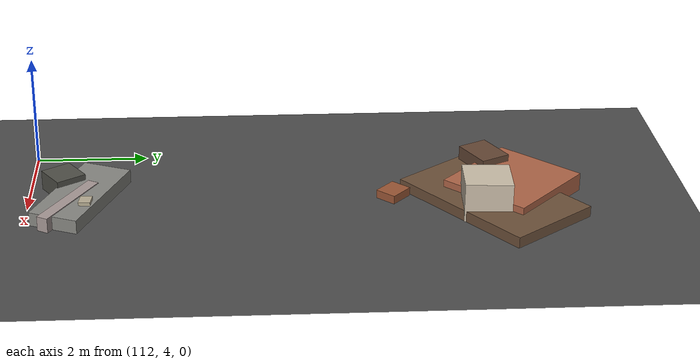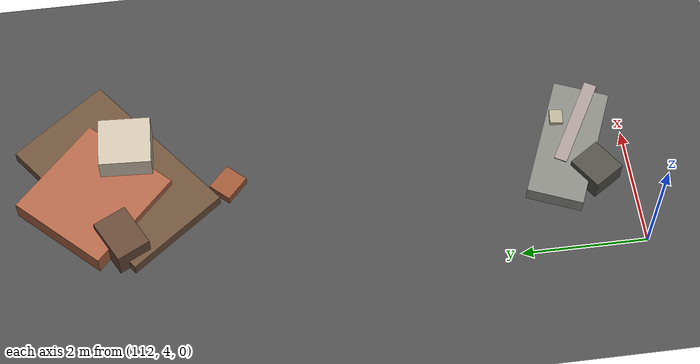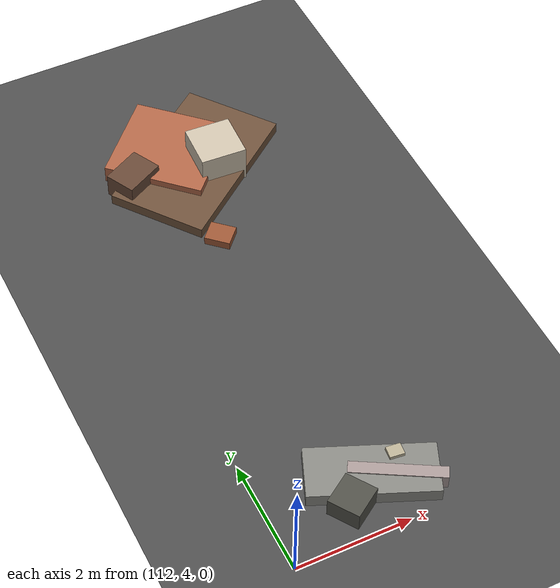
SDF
<sdf version="1.6">
 <world name="navitas_arena">
  <model name="ground_plane">
   <static>true</static>
   <link name="link">
    <collision name="collision">
     <geometry><plane><normal>0 0 1</normal><size>400 400</size></plane></geometry>
     <surface><friction><ode><mu>0.800</mu><mu2>0.800</mu2></ode></friction></surface>
    </collision>
    <visual name="visual">
     <cast_shadows>false</cast_shadows>
     <geometry><plane><normal>0 0 1</normal><size>400 400</size></plane></geometry>
     <material>
      <specular>0.04 0.04 0.04 1</specular>
      <script>
       <uri>file://media/materials/scripts/navitas_asphalt.material</uri>
       <name>Navitas/RealArenaAsphalt</name>
      </script>
     </material>
    </visual>
   </link>
  </model>
  <model name="deb_zor_2">
   <static>true</static>
   <pose>113.682 4.963 0.000 0 0 0</pose>
   <link name="link">
    <collision name="col_0">
     <pose>0.112 -0.036 0.124 0.000 0.000 -0.397</pose>
     <geometry><box><size>2.113 0.905 0.248</size></box></geometry>
    </collision>
    <visual name="vis_0">
     <pose>0.112 -0.036 0.124 0.000 0.000 -0.397</pose>
     <geometry><box><size>2.113 0.905 0.248</size></box></geometry>
     <material>
      <ambient>0.49 0.49 0.47 1</ambient>
      <diffuse>0.53 0.53 0.51 1</diffuse>
      <specular>0.05 0.05 0.045 1</specular>
     </material>
    </visual>
    <collision name="col_1">
     <pose>0.580 0.083 0.156 0.000 0.000 -0.112</pose>
     <geometry><box><size>0.253 0.208 0.312</size></box></geometry>
    </collision>
    <visual name="vis_1">
     <pose>0.580 0.083 0.156 0.000 0.000 -0.112</pose>
     <geometry><box><size>0.253 0.208 0.312</size></box></geometry>
     <material>
      <ambient>0.67 0.63 0.54 1</ambient>
      <diffuse>0.72 0.68 0.58 1</diffuse>
      <specular>0.05 0.05 0.045 1</specular>
     </material>
    </visual>
    <collision name="col_2">
     <pose>0.470 -0.224 0.133 0.000 0.000 -0.516</pose>
     <geometry><box><size>1.571 0.210 0.266</size></box></geometry>
    </collision>
    <visual name="vis_2">
     <pose>0.470 -0.224 0.133 0.000 0.000 -0.516</pose>
     <geometry><box><size>1.571 0.210 0.266</size></box></geometry>
     <material>
      <ambient>0.61 0.55 0.55 1</ambient>
      <diffuse>0.66 0.60 0.59 1</diffuse>
      <specular>0.05 0.05 0.045 1</specular>
     </material>
    </visual>
    <collision name="col_3">
     <pose>-0.411 -0.378 0.177 0.000 0.000 2.160</pose>
     <geometry><box><size>0.561 0.590 0.355</size></box></geometry>
    </collision>
    <visual name="vis_3">
     <pose>-0.411 -0.378 0.177 0.000 0.000 2.160</pose>
     <geometry><box><size>0.561 0.590 0.355</size></box></geometry>
     <material>
      <ambient>0.28 0.29 0.26 1</ambient>
      <diffuse>0.31 0.31 0.28 1</diffuse>
      <specular>0.05 0.05 0.045 1</specular>
     </material>
    </visual>
   </link>
  </model>
  <model name="deb_zor_32">
   <static>true</static>
   <pose>113.693 11.332 0.000 0 0 0</pose>
   <link name="link">
    <collision name="col_0">
     <pose>0.073 0.915 0.081 0.000 0.000 2.410</pose>
     <geometry><box><size>0.407 0.404 0.161</size></box></geometry>
    </collision>
    <visual name="vis_0">
     <pose>0.073 0.915 0.081 0.000 0.000 2.410</pose>
     <geometry><box><size>0.407 0.404 0.161</size></box></geometry>
     <material>
      <ambient>0.64 0.37 0.24 1</ambient>
      <diffuse>0.69 0.40 0.26 1</diffuse>
      <specular>0.05 0.05 0.045 1</specular>
     </material>
    </visual>
    <collision name="col_1">
     <pose>0.075 1.213 0.164 0.000 0.000 2.380</pose>
     <geometry><box><size>1.796 1.687 0.327</size></box></geometry>
    </collision>
    <visual name="vis_1">
     <pose>0.075 1.213 0.164 0.000 0.000 2.380</pose>
     <geometry><box><size>1.796 1.687 0.327</size></box></geometry>
     <material>
      <ambient>0.64 0.37 0.26 1</ambient>
      <diffuse>0.69 0.40 0.28 1</diffuse>
      <specular>0.05 0.05 0.045 1</specular>
     </material>
    </visual>
    <collision name="col_2">
     <pose>0.426 0.837 0.099 0.000 0.000 3.792</pose>
     <geometry><box><size>2.896 1.787 0.197</size></box></geometry>
    </collision>
    <visual name="vis_2">
     <pose>0.426 0.837 0.099 0.000 0.000 3.792</pose>
     <geometry><box><size>2.896 1.787 0.197</size></box></geometry>
     <material>
      <ambient>0.40 0.30 0.21 1</ambient>
      <diffuse>0.43 0.32 0.23 1</diffuse>
      <specular>0.05 0.05 0.045 1</specular>
     </material>
    </visual>
    <collision name="col_3">
     <pose>-0.778 0.826 0.226 0.000 0.000 3.618</pose>
     <geometry><box><size>0.743 0.563 0.452</size></box></geometry>
    </collision>
    <visual name="vis_3">
     <pose>-0.778 0.826 0.226 0.000 0.000 3.618</pose>
     <geometry><box><size>0.743 0.563 0.452</size></box></geometry>
     <material>
      <ambient>0.37 0.26 0.19 1</ambient>
      <diffuse>0.40 0.28 0.21 1</diffuse>
      <specular>0.05 0.05 0.045 1</specular>
     </material>
    </visual>
    <collision name="col_4">
     <pose>0.740 0.653 0.350 0.000 0.000 3.089</pose>
     <geometry><box><size>0.823 0.828 0.699</size></box></geometry>
    </collision>
    <visual name="vis_4">
     <pose>0.740 0.653 0.350 0.000 0.000 3.089</pose>
     <geometry><box><size>0.823 0.828 0.699</size></box></geometry>
     <material>
      <ambient>0.74 0.69 0.62 1</ambient>
      <diffuse>0.80 0.75 0.67 1</diffuse>
      <specular>0.05 0.05 0.045 1</specular>
     </material>
    </visual>
    <collision name="col_5">
     <pose>0.100 -0.904 0.076 0.000 0.000 2.393</pose>
     <geometry><box><size>0.457 0.391 0.152</size></box></geometry>
    </collision>
    <visual name="vis_5">
     <pose>0.100 -0.904 0.076 0.000 0.000 2.393</pose>
     <geometry><box><size>0.457 0.391 0.152</size></box></geometry>
     <material>
      <ambient>0.57 0.32 0.20 1</ambient>
      <diffuse>0.61 0.34 0.21 1</diffuse>
      <specular>0.05 0.05 0.045 1</specular>
     </material>
    </visual>
   </link>
  </model>
 </world>
</sdf>
